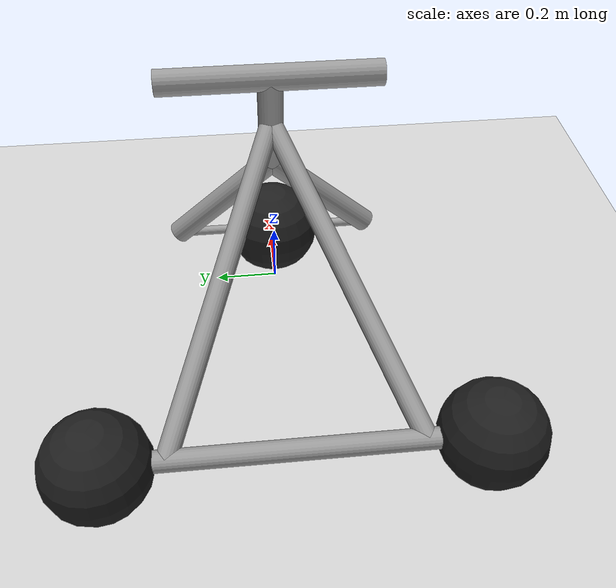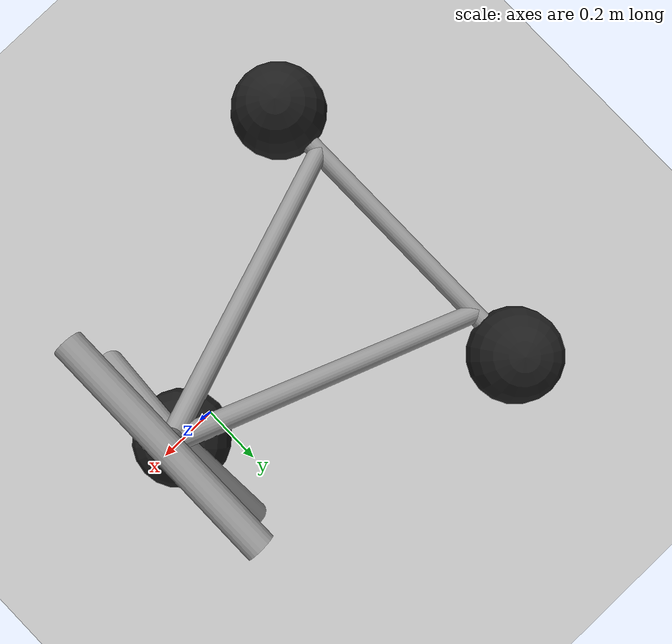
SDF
<?xml version="1.0" ?>

<sdf version="1.6">
  <world name="default">
	<gravity>-6.299 0 -7.507</gravity>
    <include>
      <uri>model://ground_plane</uri>
    </include>
    <include>
      <uri>model://sun</uri>
    </include>

    <include>
      <uri>model://custom_trisphere_cycle</uri>
      <name>my_tricycle</name>
      <pose>0 0 0  0 0 0</pose>

      <plugin name="wheel_slip" filename="libWheelSlipPlugin.so">
        <wheel link_name="wheel_front">
		<slip_compliance_lateral>3.0</slip_compliance_lateral>
		<slip_compliance_longitudinal>3.0</slip_compliance_longitudinal>
          <wheel_normal_force>32</wheel_normal_force>
        </wheel>
        <wheel link_name="wheel_rear_left">
		<slip_compliance_lateral>3.0</slip_compliance_lateral>
		<slip_compliance_longitudinal>3.0</slip_compliance_longitudinal>
          <wheel_normal_force>32</wheel_normal_force>
        </wheel>
        <wheel link_name="wheel_rear_right">
		<slip_compliance_lateral>3.0</slip_compliance_lateral>
		<slip_compliance_longitudinal>3.0</slip_compliance_longitudinal>
          <wheel_normal_force>32</wheel_normal_force>
        </wheel>
      </plugin>

      <plugin name="joint_control" filename="libJointControlPlugin.so">
        <controller type="position">
          <joint>wheel_front_steer</joint>
          <target>0</target>
          <pid_gains>9 0 0.1</pid_gains>
        </controller>
        <controller type="velocity">
          <joint>wheel_rear_left_spin</joint>
          <joint>wheel_rear_right_spin</joint>
          <joint>wheel_front_spin</joint>
          <target>6.0</target>
          <pid_gains>9 0 0</pid_gains>
        </controller>
        <controller type="force">
          <joint>wheel_rear_left_spin</joint>
          <joint>wheel_rear_right_spin</joint>
          <target>2.15</target>
        </controller>
      </plugin>

      <plugin name="ground_truth" filename="libgazebo_ros_p3d.so">
        <alwaysOn>true</alwaysOn>
        <frameName>world</frameName>
        <body_name>frame</body_name>
        <topicName>odom</topicName>
        <updateRate>30.0</updateRate>
      </plugin>

      <plugin name="wheel_rotation" filename="libgazebo_ros_joint_state_publisher.so">
        <updateRate>30.0</updateRate>
        <joint_name>wheel_rear_left_spin</joint_name>
        <joint_name>wheel_rear_right_spin</joint_name>
      </plugin>

    </include>

    <gui fullscreen='0'>
      <camera name='user_camera'>
        <pose>1.5 -4 2.5  0 0.5 1.6</pose>
        <view_controller>orbit</view_controller>
      </camera>
    </gui>
  </world>
</sdf>

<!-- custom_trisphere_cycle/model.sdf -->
<sdf version="1.6">
  <model name="trisphere_cycle">
    <link name="frame">
      <pose>-0.40855911616047164 0 0.38502293110800634  0 -0.522020852957719 0</pose>
      <inertial>
        <pose>0.0 0 0  0 0 0</pose>
        <mass>10</mass>
        <inertia>
          <ixx>0.22799999999999998</ixx>
          <iyy>0.7435210984814149</iyy>
          <izz>0.9655210984814149</izz>
          <ixy>0</ixy>
          <ixz>0</ixz>
          <iyz>0</iyz>
        </inertia>
      </inertial>
      <collision name="axle_collision">
        <pose>-0.4713346258704366 0 0  1.5707963267948966 0 0</pose>
        <geometry>
          <cylinder>
            <length>1.0392304845413263</length>
            <radius>0.03</radius>
          </cylinder>
        </geometry>
      </collision>
      <visual name="axle_visual">
        <pose>-0.4713346258704366 0 0  1.5707963267948966 0 0</pose>
        <geometry>
          <cylinder>
            <length>1.0392304845413263</length>
            <radius>0.03</radius>
          </cylinder>
        </geometry>
        <material>
          <script>
            <uri>file://media/materials/scripts/gazebo.material</uri>
            <name>Gazebo/Grey</name>
          </script>
        </material>
      </visual>
      <collision name="frame_left_collision">
        <pose>0 0.17155177419583564 0  0 1.5707963267948966 -0.3490658503988659</pose>
        <geometry>
          <cylinder>
            <length>1.0031676644991372</length>
            <radius>0.03</radius>
          </cylinder>
        </geometry>
      </collision>
      <visual name="frame_left_visual">
        <pose>0 0.17155177419583564 0  0 1.5707963267948966 -0.3490658503988659</pose>
        <geometry>
          <cylinder>
            <length>1.0031676644991372</length>
            <radius>0.03</radius>
          </cylinder>
        </geometry>
        <material>
          <script>
            <uri>file://media/materials/scripts/gazebo.material</uri>
            <name>Gazebo/Grey</name>
          </script>
        </material>
      </visual>
      <collision name="frame_right_collision">
        <pose>0 -0.17155177419583564 0  0 1.5707963267948966 0.3490658503988659</pose>
        <geometry>
          <cylinder>
            <length>1.0031676644991372</length>
            <radius>0.03</radius>
          </cylinder>
        </geometry>
      </collision>
      <visual name="frame_right_visual">
        <pose>0 -0.17155177419583564 0  0 1.5707963267948966 0.3490658503988659</pose>
        <geometry>
          <cylinder>
            <length>1.0031676644991372</length>
            <radius>0.03</radius>
          </cylinder>
        </geometry>
        <material>
          <script>
            <uri>file://media/materials/scripts/gazebo.material</uri>
            <name>Gazebo/Grey</name>
          </script>
        </material>
      </visual>
    </link>
    <link name="fork">
      <pose>0.04144088383952833 0 0.38502293110800634  0 -0.17453292519943295 0</pose>
      <inertial>
        <mass>3</mass>
        <inertia>
          <ixx>0.15820312499999997</ixx>
          <iyy>0.058359374999999984</iyy>
          <izz>0.10265624999999999</izz>
          <ixy>0</ixy>
          <ixz>0</ixz>
          <iyz>0</iyz>
        </inertia>
      </inertial>
      <collision name="handlebars_collision">
        <pose>0 0 0.397747564417433  1.5707963267948966 0 0</pose>
        <geometry>
          <cylinder>
            <length>0.6363961030678927</length>
            <radius>0.0375</radius>
          </cylinder>
        </geometry>
      </collision>
      <visual name="handlebars_visual">
        <pose>0 0 0.397747564417433  1.5707963267948966 0 0</pose>
        <geometry>
          <cylinder>
            <length>0.6363961030678927</length>
            <radius>0.0375</radius>
          </cylinder>
        </geometry>
        <material>
          <script>
            <uri>file://media/materials/scripts/gazebo.material</uri>
            <name>Gazebo/Grey</name>
          </script>
        </material>
      </visual>
      <collision name="headtube_collision">
        <pose>0 0 0.2386485386504598  0 0 0</pose>
        <geometry>
          <cylinder>
            <length>0.31819805153394637</length>
            <radius>0.0375</radius>
          </cylinder>
        </geometry>
      </collision>
      <visual name="headtube_visual">
        <pose>0 0 0.2386485386504598  0 0 0</pose>
        <geometry>
          <cylinder>
            <length>0.31819805153394637</length>
            <radius>0.0375</radius>
          </cylinder>
        </geometry>
        <material>
          <script>
            <uri>file://media/materials/scripts/gazebo.material</uri>
            <name>Gazebo/Grey</name>
          </script>
        </material>
      </visual>
      <collision name="spindle_collision">
        <pose>0 0 -0.23864853865045976  1.5707963267948966 0 0</pose>
        <geometry>
          <cylinder>
            <length>0.6363961030678927</length>
            <radius>0.015</radius>
          </cylinder>
        </geometry>
      </collision>
      <visual name="spindle_visual">
        <pose>0 0 -0.23864853865045976  1.5707963267948966 0 0</pose>
        <geometry>
          <cylinder>
            <length>0.6363961030678927</length>
            <radius>0.015</radius>
          </cylinder>
        </geometry>
        <material>
          <script>
            <uri>file://media/materials/scripts/gazebo.material</uri>
            <name>Gazebo/Grey</name>
          </script>
        </material>
      </visual>
      <collision name="fork_left_collision">
        <pose>0 0.15909902576697318 -0.07954951288348658  0.7853981633974483 0 0</pose>
        <geometry>
          <cylinder>
            <length>0.45</length>
            <radius>0.0375</radius>
          </cylinder>
        </geometry>
      </collision>
      <visual name="fork_left_visual">
        <pose>0 0.15909902576697318 -0.07954951288348658  0.7853981633974483 0 0</pose>
        <geometry>
          <cylinder>
            <length>0.45</length>
            <radius>0.0375</radius>
          </cylinder>
        </geometry>
        <material>
          <script>
            <uri>file://media/materials/scripts/gazebo.material</uri>
            <name>Gazebo/Grey</name>
          </script>
        </material>
      </visual>
      <collision name="fork_right_collision">
        <pose>0 -0.15909902576697318 -0.07954951288348658  -0.7853981633974483 0 0</pose>
        <geometry>
          <cylinder>
            <length>0.45</length>
            <radius>0.0375</radius>
          </cylinder>
        </geometry>
      </collision>
      <visual name="fork_right_visual">
        <pose>0 -0.15909902576697318 -0.07954951288348658  -0.7853981633974483 0 0</pose>
        <geometry>
          <cylinder>
            <length>0.45</length>
            <radius>0.0375</radius>
          </cylinder>
        </geometry>
        <material>
          <script>
            <uri>file://media/materials/scripts/gazebo.material</uri>
            <name>Gazebo/Grey</name>
          </script>
        </material>
      </visual>
    </link>
    <link name="wheel_front">
      <pose>0.08288176767905665 0 0.15  0 0 0</pose>
      <inertial>
        <mass>0.5</mass>
        <inertia>
          <ixx>0.0045</ixx>
          <iyy>0.0045</iyy>
          <izz>0.0045</izz>
          <ixy>0</ixy>
          <ixz>0</ixz>
          <iyz>0</iyz>
        </inertia>
      </inertial>
      <collision name="collision">
	<ignition:plowing_max_degrees>15</ignition:plowing_max_degrees>
	<ignition:plowing_deadband_velocity>0.5</ignition:plowing_deadband_velocity>
	<ignition:plowing_saturation_velocity>0.63</ignition:plowing_saturation_velocity>
        <geometry>
          <sphere>
            <radius>0.15</radius>
          </sphere>
        </geometry>
        <surface>
          <contact>
            <ode>
              <kp>4000</kp>
              <kd>16</kd>
	      <max_vel>10</max_vel>
              <min_depth>0.0005</min_depth>
            </ode>
          </contact>
          <friction>
            <ode>
              <mu>0.7</mu>
              <mu2>0.7</mu2>
              <fdir1>0 1 0</fdir1>
            </ode>
          </friction>
        </surface>
      </collision>
      <visual name="visual">
        <geometry>
          <sphere>
            <radius>0.15</radius>
          </sphere>
        </geometry>
        <material>
          <script>
            <uri>file://media/materials/scripts/gazebo.material</uri>
            <name>Gazebo/Black</name>
          </script>
        </material>
      </visual>
    </link>
    <joint name="wheel_front_steer" type="revolute">
      <parent>frame</parent>
      <child>fork</child>
      <axis>
        <xyz>0 0 1</xyz>
        <dynamics>
        <friction>1.0</friction>
        </dynamics>
        <limit>
          <lower>-0.9599310885968813</lower>
          <upper>0.9599310885968813</upper>
        </limit>
      </axis>
    </joint>
    <joint name="wheel_front_spin" type="revolute">
      <parent>fork</parent>
      <child>wheel_front</child>
      <axis>
        <xyz>0 1 0</xyz>
      </axis>
    </joint>
    <link name="wheel_rear_left">
      <pose>-0.8171182323209433 0.5196152422706631 0.15  0 0 0</pose>
      <inertial>
        <mass>0.5</mass>
        <inertia>
          <ixx>0.0045</ixx>
          <iyy>0.0045</iyy>
          <izz>0.0045</izz>
          <ixy>0</ixy>
          <ixz>0</ixz>
          <iyz>0</iyz>
        </inertia>
      </inertial>
      <collision name="collision">
	<ignition:plowing_max_degrees>15</ignition:plowing_max_degrees>
	<ignition:plowing_deadband_velocity>0.5</ignition:plowing_deadband_velocity>
	<ignition:plowing_saturation_velocity>0.63</ignition:plowing_saturation_velocity>
        <geometry>
          <sphere>
            <radius>0.15</radius>
          </sphere>
        </geometry>
        <surface>
          <contact>
            <ode>
              <kp>4000</kp>
              <kd>16</kd>
	      <max_vel>10</max_vel>
              <min_depth>0.0005</min_depth>
            </ode>
          </contact>
          <friction>
            <ode>
              <mu>0.7</mu>
              <mu2>0.7</mu2>
              <fdir1>0 1 0</fdir1>
            </ode>
          </friction>
        </surface>
      </collision>
      <visual name="visual">
        <geometry>
          <sphere>
            <radius>0.15</radius>
          </sphere>
        </geometry>
        <material>
          <script>
            <uri>file://media/materials/scripts/gazebo.material</uri>
            <name>Gazebo/Black</name>
          </script>
        </material>
      </visual>
    </link>
    <joint name="wheel_rear_left_spin" type="revolute">
      <parent>frame</parent>
      <child>wheel_rear_left</child>
      <axis>
        <xyz>0 1 0</xyz>
      </axis>
    </joint>
    <link name="wheel_rear_right">
      <pose>-0.8171182323209433 -0.5196152422706631 0.15  0 0 0</pose>
      <inertial>
        <mass>0.5</mass>
        <inertia>
          <ixx>0.0045</ixx>
          <iyy>0.0045</iyy>
          <izz>0.0045</izz>
          <ixy>0</ixy>
          <ixz>0</ixz>
          <iyz>0</iyz>
        </inertia>
      </inertial>
      <collision name="collision">
	<ignition:plowing_max_degrees>15</ignition:plowing_max_degrees>
	<ignition:plowing_deadband_velocity>0.5</ignition:plowing_deadband_velocity>
	<ignition:plowing_saturation_velocity>0.63</ignition:plowing_saturation_velocity>
        <geometry>
          <sphere>
            <radius>0.15</radius>
          </sphere>
        </geometry>
        <surface>
          <contact>
            <ode>
              <kp>4000</kp>
              <kd>16</kd>
	      <max_vel>10</max_vel>
              <min_depth>0.0005</min_depth>
            </ode>
          </contact>
          <friction>
            <ode>
              <mu>0.7</mu>
              <mu2>0.7</mu2>
              <fdir1>0 1 0</fdir1>
            </ode>
          </friction>
        </surface>
      </collision>
      <visual name="visual">
        <geometry>
          <sphere>
            <radius>0.15</radius>
          </sphere>
        </geometry>
        <material>
          <script>
            <uri>file://media/materials/scripts/gazebo.material</uri>
            <name>Gazebo/Black</name>
          </script>
        </material>
      </visual>
    </link>
    <joint name="wheel_rear_right_spin" type="revolute">
      <parent>frame</parent>
      <child>wheel_rear_right</child>
      <axis>
        <xyz>0 1 0</xyz>
      </axis>
    </joint>
  </model>
</sdf>
